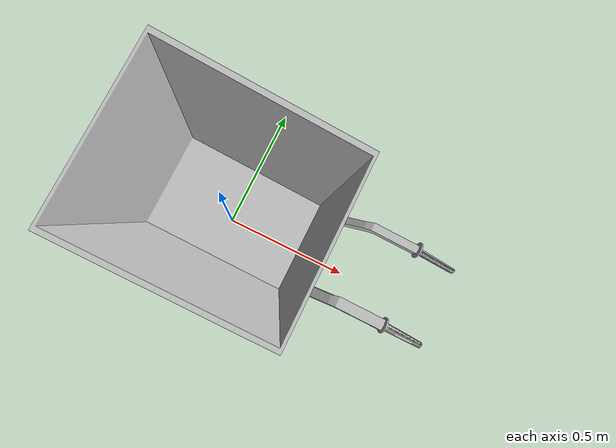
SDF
<?xml version="1.0"?>
<sdf version="1.4">
  <model name="barrow">
    <pose>0 0 0 0 0 0</pose>
    <static>true</static>
    <link name="barrow_link">
      <collision name="barrow_collision">
        <pose>0 0 0 0 0 0</pose>
        <geometry>
          <mesh>
            <uri>model://gazebo_worlds_cdt/models/barrow/meshes/barrow.dae</uri>
          </mesh>
        </geometry>
      </collision>
      <visual name="barrow_visual">
        <pose>0 0 0 0 0 0</pose>
        <geometry>
          <mesh>
            <uri>model://gazebo_worlds_cdt/models/barrow/meshes/barrow.dae</uri>
          </mesh>
        </geometry>
      </visual>
    </link>
  </model>
</sdf>
